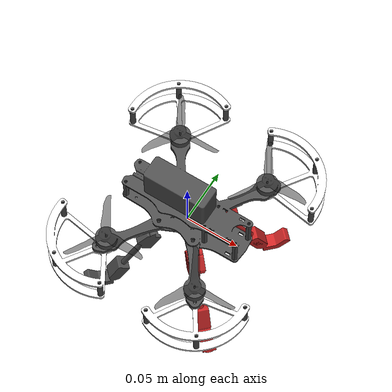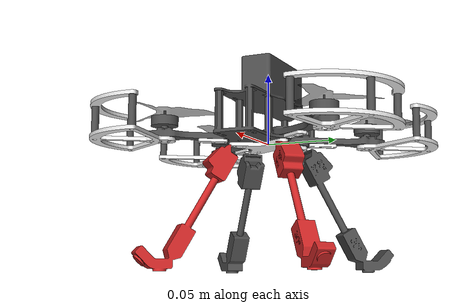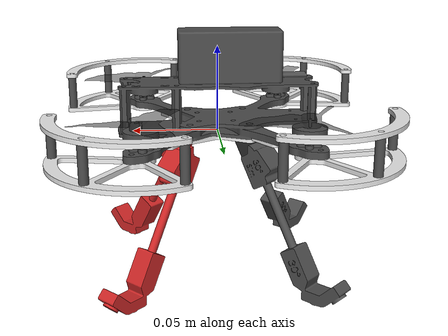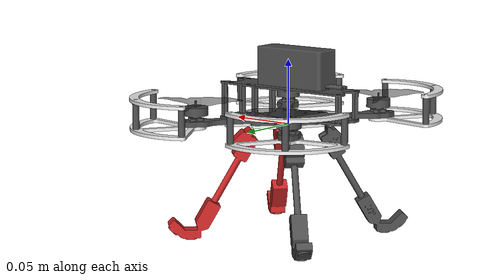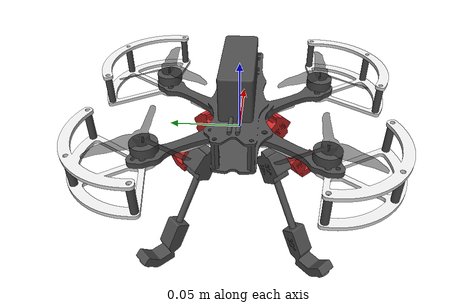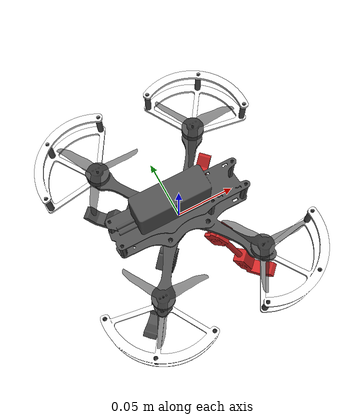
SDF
<?xml version='1.0'?>
<sdf version='1.7'>
  <model name='A30_L75'>

    <include>
      <uri>model://SAR_Base</uri>
    </include>

    <link name='Leg_1'>
      <pose>20.3e-3 -21.5e-3 -6.5e-3 0 1.047 -0.785</pose>
      <inertial>
        <mass>1.83E-2</mass>
        <pose>5.30E-2 0 2.40E-3 0 0 0 </pose>
        <inertia>
          <ixx>1.08E-6</ixx>
          <ixy>0</ixy>
          <ixz>2.48E-6</ixz>
          <iyy>2.91E-5</iyy>
          <iyz>0</iyz>
          <izz>2.84E-5</izz>
        </inertia>
      </inertial>
      <gravity>1</gravity>
      <self_collide>0</self_collide>
      <visual name='Leg_Visual'>
        <pose>0 0 0 0 0 0</pose>
        <geometry>
          <mesh>
            <uri>model://Leg_Assemblies/meshes/Leg_Assembly_30_deg--75mm.STL</uri>
            <scale>1 1 1</scale>
          </mesh>
        </geometry>
        <material>
          <script>
            <name>Gazebo/Red </name>
            <uri>file://media/materials/scripts/gazebo.material</uri>
          </script>
          <lighting>1</lighting>
        </material>
      </visual>
      <collision name="Leg_Collision_1">
        <pose>89.7e-3 0 7.8e-3 0 0 0</pose>
        <geometry>
          <sphere>
            <radius>6.5e-3</radius>
          </sphere>
        </geometry>
      </collision>
      <sensor name="Contact_Sensor" type="contact">
        <update_rate>100.0</update_rate>
        <contact>
          <collision>Leg_Collision_1</collision>
        </contact>
      </sensor>
      <self_collide>1</self_collide>
    </link>

    <link name='Leg_2'>
      <pose>-20.3e-3 -21.5e-3 -6.5e-3 0 1.047 -2.35</pose>
      <inertial>
        <mass>1.83E-2</mass>
        <pose>5.30E-2 0 2.40E-3 0 0 0 </pose>
        <inertia>
          <ixx>1.08E-6</ixx>
          <ixy>0</ixy>
          <ixz>2.48E-6</ixz>
          <iyy>2.91E-5</iyy>
          <iyz>0</iyz>
          <izz>2.84E-5</izz>
        </inertia>
      </inertial>
      <gravity>1</gravity>
      <self_collide>0</self_collide>
      <visual name='Leg_Visual'>
        <pose>0 0 0 0 0 0</pose>
        <geometry>
          <mesh>
            <uri>model://Leg_Assemblies/meshes/Leg_Assembly_30_deg--75mm.STL</uri>
            <scale>1 1 1</scale>
          </mesh>
        </geometry>
        <material>
          <script>
            <name>Gazebo/DarkGrey </name>
            <uri>file://media/materials/scripts/gazebo.material</uri>
          </script>
          <lighting>1</lighting>
        </material>
      </visual>
      <collision name="Leg_Collision_2">
        <pose>89.7e-3 0 7.8e-3 0 0 0</pose>
        <geometry>
          <sphere>
            <radius>6.5e-3</radius>
          </sphere>
        </geometry>
      </collision>
      <sensor name="Contact_Sensor" type="contact">
        <update_rate>100.0</update_rate>
        <contact>
          <collision>Leg_Collision_2</collision>
        </contact>
      </sensor>
      <self_collide>1</self_collide>
    </link>

    <link name='Leg_3'>
      <pose>-20.3e-3 21.5e-3 -6.5e-3 0 1.047 2.35</pose>
      <inertial>
        <mass>1.83E-2</mass>
        <pose>5.30E-2 0 2.40E-3 0 0 0 </pose>
        <inertia>
          <ixx>1.08E-6</ixx>
          <ixy>0</ixy>
          <ixz>2.48E-6</ixz>
          <iyy>2.91E-5</iyy>
          <iyz>0</iyz>
          <izz>2.84E-5</izz>
        </inertia>
      </inertial>
      <gravity>1</gravity>
      <self_collide>0</self_collide>
      <visual name='Leg_Visual'>
        <pose>0 0 0 0 0 0</pose>
        <geometry>
          <mesh>
            <uri>model://Leg_Assemblies/meshes/Leg_Assembly_30_deg--75mm.STL</uri>
            <scale>1 1 1</scale>
          </mesh>
        </geometry>
        <material>
          <script>
            <name>Gazebo/DarkGrey </name>
            <uri>file://media/materials/scripts/gazebo.material</uri>
          </script>
          <lighting>1</lighting>
        </material>
      </visual>
      <collision name="Leg_Collision_3">
        <pose>89.7e-3 0 7.8e-3 0 0 0</pose>
        <geometry>
          <sphere>
            <radius>6.5e-3</radius>
          </sphere>
        </geometry>
      </collision>
      <sensor name="Contact_Sensor" type="contact">
        <update_rate>100.0</update_rate>
        <contact>
          <collision>Leg_Collision_3</collision>
        </contact>
      </sensor>
      <self_collide>1</self_collide>
    </link>

    <link name='Leg_4'>
      <pose>20.3e-3 21.5e-3 -6.5e-3 0 1.047 0.785</pose>
      <inertial>
        <mass>1.83E-2</mass>
        <pose>5.30E-2 0 2.40E-3 0 0 0 </pose>
        <inertia>
          <ixx>1.08E-6</ixx>
          <ixy>0</ixy>
          <ixz>2.48E-6</ixz>
          <iyy>2.91E-5</iyy>
          <iyz>0</iyz>
          <izz>2.84E-5</izz>
        </inertia>
      </inertial>
      <gravity>1</gravity>
      <self_collide>0</self_collide>
      <visual name='Leg_Visual'>
        <pose>0 0 0 0 0 0</pose>
        <geometry>
          <mesh>
            <uri>model://Leg_Assemblies/meshes/Leg_Assembly_30_deg--75mm.STL</uri>
            <scale>1 1 1</scale>
          </mesh>
        </geometry>
        <material>
          <script>
            <name>Gazebo/Red </name>
            <uri>file://media/materials/scripts/gazebo.material</uri>
          </script>
          <lighting>1</lighting>
        </material>
      </visual>
      <collision name="Leg_Collision_4">
        <pose>89.7e-3 0 7.8e-3 0 0 0</pose>
        <geometry>
          <sphere>
            <radius>6.5e-3</radius>
          </sphere>
        </geometry>
      </collision>
      <sensor name="Contact_Sensor" type="contact">
        <update_rate>100.0</update_rate>
        <contact>
          <collision>Leg_Collision_4</collision>
        </contact>
      </sensor>
      <self_collide>1</self_collide>
    </link>

    <joint name='Hinge_1_Joint' type='universal'>
      <parent>SAR_Base::SAR_Body</parent>
      <child>Leg_1</child>
      <pose>0 0 0 0 0 0</pose>
      <axis>
        <xyz>0 1 0</xyz>
        <limit>
          <lower>-5</lower>
          <upper>5</upper>
        </limit>
        <dynamics>
          <spring_stiffness>0</spring_stiffness>
          <damping>0</damping>
        </dynamics>
      </axis>
      <axis2>
        <xyz>0 0 1</xyz>
        <limit>
          <lower>-5</lower>
          <upper>5</upper>
        </limit>
        <dynamics>
          <spring_stiffness>0</spring_stiffness>
          <damping>0</damping>
        </dynamics>
      </axis2>
    </joint>

    <joint name='Hinge_2_Joint' type='universal'>
      <parent>SAR_Base::SAR_Body</parent>
      <child>Leg_2</child>
      <pose>0 0 0 0 0 0</pose>
      <axis>
        <xyz>0 1 0</xyz>
        <limit>
          <lower>-5</lower>
          <upper>5</upper>
        </limit>
        <dynamics>
          <spring_stiffness>0</spring_stiffness>
          <damping>0</damping>
        </dynamics>
      </axis>
      <axis2>
        <xyz>0 0 1</xyz>
        <limit>
          <lower>-5</lower>
          <upper>5</upper>
        </limit>
        <dynamics>
          <spring_stiffness>0</spring_stiffness>
          <damping>0</damping>
        </dynamics>
      </axis2>
    </joint>

    <joint name='Hinge_3_Joint' type='universal'>
      <parent>SAR_Base::SAR_Body</parent>
      <child>Leg_3</child>
      <pose>0 0 0 0 0 0</pose>
      <axis>
        <xyz>0 1 0</xyz>
        <limit>
          <lower>-5</lower>
          <upper>5</upper>
        </limit>
        <dynamics>
          <spring_stiffness>0</spring_stiffness>
          <damping>0</damping>
        </dynamics>
      </axis>
      <axis2>
        <xyz>0 0 1</xyz>
        <limit>
          <lower>-5</lower>
          <upper>5</upper>
        </limit>
        <dynamics>
          <spring_stiffness>0</spring_stiffness>
          <damping>0</damping>
        </dynamics>
      </axis2>
    </joint>

    <joint name='Hinge_4_Joint' type='universal'>
      <parent>SAR_Base::SAR_Body</parent>
      <child>Leg_4</child>
      <pose>0 0 0 0 0 0</pose>
      <axis>
        <xyz>0 1 0</xyz>
        <limit>
          <lower>-5</lower>
          <upper>5</upper>
        </limit>
        <dynamics>
          <spring_stiffness>0</spring_stiffness>
          <damping>0</damping>
        </dynamics>
      </axis>
      <axis2>
        <xyz>0 0 1</xyz>
        <limit>
          <lower>-5</lower>
          <upper>5</upper>
        </limit>
        <dynamics>
          <spring_stiffness>0</spring_stiffness>
          <damping>0</damping>
        </dynamics>
      </axis2>
    </joint>

    <plugin name='Leg_1_Plugin' filename='libSticky_Leg_Plugin.so'>
      <LegNumber>1</LegNumber>
      <LinkName>Leg_1</LinkName>
      <CollisionName>Leg_Collision_1</CollisionName>
      <JointName>Leg_1_Contact_Joint</JointName>
    </plugin>

    <plugin name='Leg_2_Plugin' filename='libSticky_Leg_Plugin.so'>
      <LegNumber>2</LegNumber>
      <LinkName>Leg_2</LinkName>
      <CollisionName>Leg_Collision_2</CollisionName>
      <JointName>Leg_2_Contact_Joint</JointName>
    </plugin>

    <plugin name='Leg_3_Plugin' filename='libSticky_Leg_Plugin.so'>
      <LegNumber>3</LegNumber>
      <LinkName>Leg_3</LinkName>
      <CollisionName>Leg_Collision_3</CollisionName>
      <JointName>Leg_3_Contact_Joint</JointName>
    </plugin>

    <plugin name='Leg_4_Plugin' filename='libSticky_Leg_Plugin.so'>
      <LegNumber>4</LegNumber>
      <LinkName>Leg_4</LinkName>
      <CollisionName>Leg_Collision_4</CollisionName>
      <JointName>Leg_4_Contact_Joint</JointName>
    </plugin>

    <static>0</static>
    <allow_auto_disable>1</allow_auto_disable>
  </model>
</sdf>

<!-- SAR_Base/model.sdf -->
<sdf version='1.7'>
  <model name='SAR_Base'>
    <link name='SAR_Body'>
      <pose>0 0 0 0 0 0</pose>
      <inertial>
        <mass>275.0e-3</mass>
        <inertia>
          <ixx>6.17e-4</ixx>
          <ixy>0</ixy>
          <ixz>0</ixz>
          <iyy>4.64e-4</iyy>
          <iyz>0</iyz>
          <izz>1.02e-3</izz>
        </inertia>
        <pose>0 0 18.0e-3 0 0 0</pose>
      </inertial>
      <gravity>1</gravity>
      <self_collide>0</self_collide>
      <kinematic>0</kinematic>
      <enable_wind>0</enable_wind>

      <visual name='Impulse_Micro_Base_Assembly'>
        <pose>0 0 0 0 0 0</pose>
        <geometry>
          <mesh>
            <uri>model://SAR_Base/meshes/Impulse_Micro_Base_Assembly.STL</uri>
            <scale>1 1 1</scale>
          </mesh>
        </geometry>
        <material>
          <script>
            <name>Gazebo/DarkGrey</name>
            <uri>file://media/materials/scripts/gazebo.material</uri>
          </script>
          <lighting>1</lighting>
        </material>
      </visual>

      <visual name='Impulse_Micro_Prop_Guards'>
        <pose>0 0 0 0 0 0</pose>
        <geometry>
          <mesh>
            <uri>model://SAR_Base/meshes/Impulse_Micro_Prop_Guards.STL</uri>
            <scale>1 1 1</scale>
          </mesh>
        </geometry>
        <material>
          <script>
            <name>Gazebo/White</name>
            <uri>file://media/materials/scripts/gazebo.material</uri>
          </script>
          <lighting>1</lighting>
        </material>
      </visual>

      <visual name='Impulse_Micro_Prop_Guard_Standoffs'>
        <pose>0 0 0 0 0 0</pose>
        <geometry>
          <mesh>
            <uri>model://SAR_Base/meshes/Impulse_Micro_Prop_Guard_Standoffs.STL</uri>
            <scale>1 1 1</scale>
          </mesh>
        </geometry>
        <material>
          <script>
            <name>Gazebo/DarkGrey</name>
            <uri>file://media/materials/scripts/gazebo.material</uri>
          </script>
          <lighting>1</lighting>
        </material>
      </visual>

      <visual name='Impulse_Micro_Leg_Assembly_Converter_Parts'>
        <pose>0 0 0 0 0 0</pose>
        <geometry>
          <mesh>
            <uri>model://SAR_Base/meshes/Impulse_Micro_Leg_Assembly_Converter_Parts.STL</uri>
            <scale>1 1 1</scale>
          </mesh>
        </geometry>
        <material>
          <script>
            <name>Gazebo/White</name>
            <uri>file://media/materials/scripts/gazebo.material</uri>
          </script>
          <lighting>1</lighting>
        </material>
      </visual>

      <collision name='Prop_Collision_1'>
        <pose>44.5e-3 -58.6e-3 14.75e-3 0 0 0</pose>
        <geometry>
          <cylinder>
            <length>29.5e-3</length>
            <radius>50.0e-3</radius>
          </cylinder>
        </geometry>
      </collision>

      <collision name='Prop_Collision_2'>
        <pose>-44.5e-3 -58.6e-3 14.75e-3 0 0 0</pose>
        <geometry>
          <cylinder>
            <length>29.5e-3</length>
            <radius>50.0e-3</radius>
          </cylinder>
        </geometry>
      </collision>

      <collision name='Prop_Collision_3'>
        <pose>-44.5e-3 58.6e-3 14.75e-3 0 0 0</pose>
        <geometry>
          <cylinder>
            <length>29.5e-3</length>
            <radius>50.0e-3</radius>
          </cylinder>
        </geometry>
      </collision>

      <collision name='Prop_Collision_4'>
        <pose>44.5e-3 58.6e-3 14.75e-3 0 0 0</pose>
        <geometry>
          <cylinder>
            <length>29.5e-3</length>
            <radius>50.0e-3</radius>
          </cylinder>
        </geometry>
      </collision>

      <collision name='Body_Collision'>
        <pose>-7.0e-3 0 44.5e-3 0 0 0</pose>
        <geometry>
          <box>
            <size>60.0e-3 22.0e-3 30.0e-3 </size>
          </box>
        </geometry>
      </collision>
    </link>

    <link name='Prop_1'>
      <inertial>
        <mass>1e-6</mass>
        <inertia>
          <ixx>1e-9</ixx>
          <ixy>0</ixy>
          <ixz>0</ixz>
          <iyy>1e-9</iyy>
          <iyz>0</iyz>
          <izz>1e-9</izz>
        </inertia>
        <pose>0 0 0 0 0 0</pose>
      </inertial>
      <pose>44.5e-3 -58.6e-3 17.2e-3 0 0 0</pose>
      <gravity>1</gravity>
      <self_collide>0</self_collide>
      <visual name='IM_Prop_1'>
        <pose>0 0 0 0 0 0</pose>
        <geometry>
          <mesh>
            <uri>model://SAR_Base/meshes/Impulse_Micro_3-inch_Prop_CCW.STL</uri>
            <scale>1 1 1</scale>
          </mesh>
        </geometry>
        <material>
          <script>
            <uri>file://media/materials/scripts/gazebo.material</uri>
            <name>Gazebo/BlackTransparent</name>
          </script>
        </material>
      </visual>
    </link>

    <link name='Prop_2'>
      <inertial>
        <mass>1e-6</mass>
        <inertia>
          <ixx>1e-9</ixx>
          <ixy>0</ixy>
          <ixz>0</ixz>
          <iyy>1e-9</iyy>
          <iyz>0</iyz>
          <izz>1e-9</izz>
        </inertia>
        <pose>0 0 0 0 0 0</pose>
      </inertial>
      <pose>-44.5e-3 -58.6e-3 17.2e-3 0 0 0</pose>
      <gravity>1</gravity>
      <self_collide>0</self_collide>
      <visual name='IM_Prop_2'>
        <pose>0 0 0 0 0 0</pose>
        <geometry>
          <mesh>
            <uri>model://SAR_Base/meshes/Impulse_Micro_3-inch_Prop_CW.STL</uri>
            <scale>1 1 1</scale>
          </mesh>
        </geometry>
        <material>
          <script>
            <uri>file://media/materials/scripts/gazebo.material</uri>
            <name>Gazebo/BlackTransparent</name>
          </script>
        </material>
      </visual>
    </link>

    <link name='Prop_3'>
      <inertial>
        <mass>1e-6</mass>
        <inertia>
          <ixx>1e-9</ixx>
          <ixy>0</ixy>
          <ixz>0</ixz>
          <iyy>1e-9</iyy>
          <iyz>0</iyz>
          <izz>1e-9</izz>
        </inertia>
        <pose>0 0 0 0 0 0</pose>
      </inertial>
      <pose>-44.5e-3 58.6e-3 17.2e-3 0 0 0</pose>
      <gravity>1</gravity>
      <self_collide>0</self_collide>
      <visual name='IM_Prop_3'>
        <pose>0 0 0 0 0 0</pose>
        <geometry>
          <mesh>
            <uri>model://SAR_Base/meshes/Impulse_Micro_3-inch_Prop_CCW.STL</uri>
            <scale>1 1 1</scale>
          </mesh>
        </geometry>
        <material>
          <script>
            <uri>file://media/materials/scripts/gazebo.material</uri>
            <name>Gazebo/BlackTransparent</name>
          </script>
        </material>
      </visual>
    </link>

    <link name='Prop_4'>
      <inertial>
        <mass>1e-6</mass>
        <inertia>
          <ixx>1e-9</ixx>
          <ixy>0</ixy>
          <ixz>0</ixz>
          <iyy>1e-9</iyy>
          <iyz>0</iyz>
          <izz>1e-9</izz>
        </inertia>
        <pose>0 0 0 0 0 0</pose>
      </inertial>
      <pose>44.5e-3 58.6e-3 17.2e-3 0 0 0</pose>
      <gravity>1</gravity>
      <self_collide>0</self_collide>
      <visual name='IM_Prop_4'>
        <pose>0 0 0 0 0 0</pose>
        <geometry>
          <mesh>
            <uri>model://SAR_Base/meshes/Impulse_Micro_3-inch_Prop_CW.STL</uri>
            <scale>1 1 1</scale>
          </mesh>
        </geometry>
        <material>
          <script>
            <uri>file://media/materials/scripts/gazebo.material</uri>
            <name>Gazebo/BlackTransparent</name>
          </script>
        </material>
      </visual>
    </link>

    <link name='Camera'>
      <inertial>
        <mass>1e-6</mass>
        <inertia>
          <ixx>1e-9</ixx>
          <ixy>0</ixy>
          <ixz>0</ixz>
          <iyy>1e-9</iyy>
          <iyz>0</iyz>
          <izz>1e-9</izz>
        </inertia>
        <pose>0 0 0 0 0 0</pose>
      </inertial>

      <sensor type="camera" name="Camera">
        <pose>0 0 0 0 0 0</pose>
        <update_rate>100</update_rate>        <!--Changed to a nice number for FPS because message didn't contain enough precision -->
        <visualize>false</visualize>
        <camera name="head">
          <save enabled="false">
            <path>/home/bhabas/Downloads/Video_images</path>
            <!--Convert Command: ffmpeg -framerate 60 -pattern_type glob -i '*.jpg' -c:v libx264 -pix_fmt yuv420p out.mp4 -->
          </save>
          <horizontal_fov>1.435</horizontal_fov>          <!-- 82.22 deg FoV to match AI Deck -->
          <image>
            <width>64</width>
            <height>64</height>
            <format>L8</format>
          </image>
          <clip>
            <near>0.02</near>
            <far>300</far>
          </clip>
          <noise>
            <type>gaussian</type>
            <!-- Noise is sampled independently per pixel on each frame.
                 That pixel's noise value is added to each of its color
                 channels, which at that point lie in the range [0,1]. -->
            <mean>0.0</mean>
            <stddev>0.000</stddev>
          </noise>
          <lens>
            <type>sterographic</type>
          </lens>
        </camera>
        <plugin name="camera_controller" filename="libgazebo_ros_camera.so">
          <alwaysOn>true</alwaysOn>
          <updateRate>0.0</updateRate>
          <cameraName>SAR_Internal/camera</cameraName>
          <imageTopicName>image_raw</imageTopicName>
          <cameraInfoTopicName>camera_info</cameraInfoTopicName>
          <frameName>camera_sensor</frameName>
          <hackBaseline>0.0</hackBaseline>
          <distortionK1>0.0</distortionK1>
          <distortionK2>0.0</distortionK2>
          <distortionK3>0.0</distortionK3>
          <distortionT1>0.0</distortionT1>
          <distortionT2>0.0</distortionT2>
        </plugin>
      </sensor>

      <visual name='camera_center'>
        <cast_shadows>0</cast_shadows>
        <pose>0 0 0 0 0 0</pose>
        <geometry>
          <sphere>
            <radius>0.002</radius>
          </sphere>
        </geometry>
        <material>
          <script>
            <name>Gazebo/Blue</name>
            <uri>file://media/materials/scripts/gazebo.material</uri>
          </script>
          <shader type='pixel'>
            <normal_map>__default__</normal_map>
          </shader>
        </material>
      </visual>
    </link>

    <joint name='Prop_1_Joint' type='revolute'>
      <parent>SAR_Body</parent>
      <child>Prop_1</child>
      <pose>0 0 0 0 0 0</pose>
      <axis>
        <xyz>0 0 1</xyz>
        <limit>
          <lower>-1.79769e+308</lower>
          <upper>1.79769e+308</upper>
          <effort>-1</effort>
          <velocity>-1</velocity>
        </limit>
        <dynamics>
          <spring_reference>0</spring_reference>
          <spring_stiffness>0</spring_stiffness>
        </dynamics>
      </axis>
    </joint>

    <joint name='Prop_2_Joint' type='revolute'>
      <parent>SAR_Body</parent>
      <child>Prop_2</child>
      <pose>0 0 0 0 0 0</pose>
      <axis>
        <xyz>0 0 1</xyz>
        <limit>
          <lower>-1.79769e+308</lower>
          <upper>1.79769e+308</upper>
          <effort>-1</effort>
          <velocity>-1</velocity>
        </limit>
        <dynamics>
          <spring_reference>0</spring_reference>
          <spring_stiffness>0</spring_stiffness>
        </dynamics>
      </axis>
    </joint>

    <joint name='Prop_3_Joint' type='revolute'>
      <parent>SAR_Body</parent>
      <child>Prop_3</child>
      <pose>0 0 0 0 0 0</pose>
      <axis>
        <xyz>0 0 1</xyz>
        <limit>
          <lower>-1.79769e+308</lower>
          <upper>1.79769e+308</upper>
          <effort>-1</effort>
          <velocity>-1</velocity>
        </limit>
        <dynamics>
          <spring_reference>0</spring_reference>
          <spring_stiffness>0</spring_stiffness>
        </dynamics>
      </axis>
    </joint>

    <joint name='Prop_4_Joint' type='revolute'>
      <parent>SAR_Body</parent>
      <child>Prop_4</child>
      <pose>0 0 0 0 0 0</pose>
      <axis>
        <xyz>0 0 1</xyz>
        <limit>
          <lower>-1.79769e+308</lower>
          <upper>1.79769e+308</upper>
          <effort>-1</effort>
          <velocity>-1</velocity>
        </limit>
        <dynamics>
          <spring_reference>0</spring_reference>
          <spring_stiffness>0</spring_stiffness>
        </dynamics>
      </axis>
    </joint>

    <joint name='Camera_Joint' type='fixed'>
      <parent>SAR_Body</parent>
      <child>Camera</child>
    </joint>

    <plugin name='Motor_1_Plugin' filename='libMotor_Plugin.so'>
      <Motor_Number>1</Motor_Number>
      <Joint_Name>Prop_1_Joint</Joint_Name>
      <Link_Name>Prop_1</Link_Name>
      <Turning_Direction>ccw</Turning_Direction>
      <Visual_Slowdown>100</Visual_Slowdown>
    </plugin>

    <plugin name='Motor_2_Plugin' filename='libMotor_Plugin.so'>
      <Motor_Number>2</Motor_Number>
      <Joint_Name>Prop_2_Joint</Joint_Name>
      <Link_Name>Prop_2</Link_Name>
      <Turning_Direction>cw</Turning_Direction>
      <Visual_Slowdown>100</Visual_Slowdown>
    </plugin>

    <plugin name='Motor_3_Plugin' filename='libMotor_Plugin.so'>
      <Motor_Number>3</Motor_Number>
      <Joint_Name>Prop_3_Joint</Joint_Name>
      <Link_Name>Prop_3</Link_Name>
      <Turning_Direction>ccw</Turning_Direction>
      <Visual_Slowdown>100</Visual_Slowdown>
    </plugin>

    <plugin name='Motor_4_Plugin' filename='libMotor_Plugin.so'>
      <Motor_Number>4</Motor_Number>
      <Joint_Name>Prop_4_Joint</Joint_Name>
      <Link_Name>Prop_4</Link_Name>
      <Turning_Direction>cw</Turning_Direction>
      <Visual_Slowdown>100</Visual_Slowdown>
    </plugin>

    <plugin name='SAR_Update_Plugin' filename='libSAR_Update_Plugin.so'>
      <CameraJointName>Camera_Joint</CameraJointName>
    </plugin>

    <plugin name='Vicon_plugin' filename='libgazebo_ros_p3d.so'>
      <alwaysOn>true</alwaysOn>
      <updateRate>1000</updateRate>
      <bodyName>SAR_Body</bodyName>
      <topicName>SAR_External/ExtPosition</topicName>
      <frameName>world</frameName>
      <xyzOffsets>0 0 0</xyzOffsets>
      <rpyOffsets>0 0 0</rpyOffsets>
      <robotNamespace>/</robotNamespace>
    </plugin>

    <plugin name="IMU_plugin" filename="libgazebo_ros_imu.so">
      <alwaysOn>true</alwaysOn>
      <updateRate>1000</updateRate>
      <bodyName>SAR_Body</bodyName>
      <topicName>SAR_Internal/IMU</topicName>
      <serviceName>imu_service</serviceName>
      <gaussianNoise>0.0</gaussianNoise>
      <xyzOffset>0 0 0</xyzOffset>
      <rpyOffset>0 0 0</rpyOffset>
      <frameName>SAR_Body</frameName>
    </plugin>

    <static>0</static>
    <allow_auto_disable>1</allow_auto_disable>
  </model>
</sdf>
